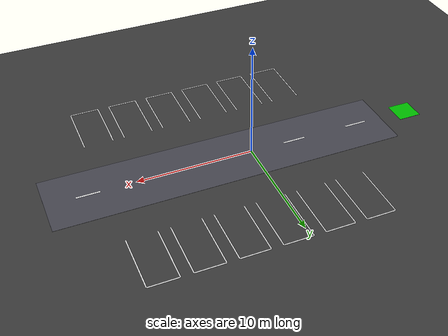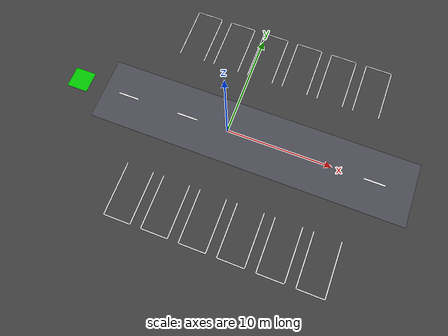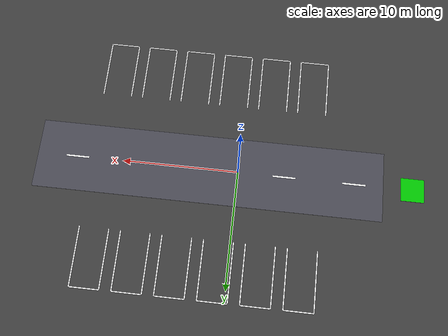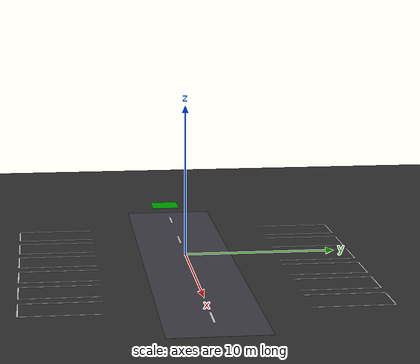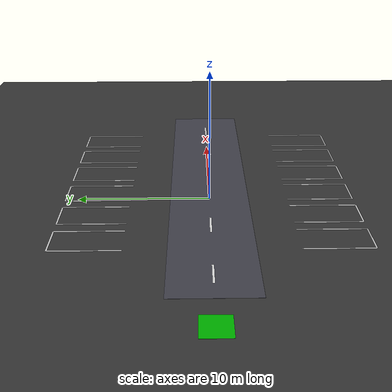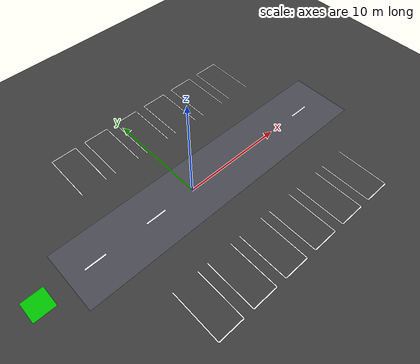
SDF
<?xml version="1.0" ?>
<sdf version="1.6">
  <world name="parking_lot_a">

    <!-- Sun / lighting -->
    <include>
      <uri>model://sun</uri>
    </include>

    <!-- Physics -->
    <physics type="ode">
      <real_time_update_rate>1000</real_time_update_rate>
      <max_step_size>0.001</max_step_size>
    </physics>

    <!-- Ground (asphalt) -->
    <model name="ground_plane">
      <static>true</static>
      <link name="link">
        <collision name="collision">
          <geometry>
            <plane>
              <normal>0 0 1</normal>
              <size>40 40</size>
            </plane>
          </geometry>
        </collision>
        <visual name="visual">
          <geometry>
            <plane>
              <normal>0 0 1</normal>
              <size>40 40</size>
            </plane>
          </geometry>
          <material>
            <ambient>0.25 0.25 0.25 1</ambient>
            <diffuse>0.25 0.25 0.25 1</diffuse>
          </material>
        </visual>
      </link>
    </model>

    <!-- Entrance marker (green box) -->
    <model name="entrance_marker">
      <static>true</static>
      <link name="link">
        <visual name="entrance_visual">
          <pose>-15 0 0 0 0 0</pose>
          <geometry><box><size>2 2 0.02</size></box></geometry>
          <material><diffuse>0 0.8 0 1</diffuse></material>
        </visual>
      </link>
    </model>

    <!-- Central road (horizontal) -->
    <model name="main_lane">
      <static>true</static>
      <link name="link">
        <visual name="lane_surface">
          <pose>2.5 0 0.001 0 0 0</pose>
          <geometry><box><size>30 6 0.01</size></box></geometry>
          <material>
            <ambient>0.20 0.20 0.22 1</ambient>
            <diffuse>0.30 0.30 0.34 1</diffuse>
          </material>
        </visual>

        <!-- Center dashed lines -->
        <visual name="dash1"><pose>-10 0 0.002 0 0 0</pose>
          <geometry><box><size>2 0.15 0.01</size></box></geometry>
          <material><diffuse>1 1 1 1</diffuse></material>
        </visual>
        <visual name="dash2"><pose>-4 0 0.002 0 0 0</pose>
          <geometry><box><size>2 0.15 0.01</size></box></geometry>
          <material><diffuse>1 1 1 1</diffuse></material>
        </visual>
        <visual name="dash3"><pose>2 0 0.002 0 0 0</pose>
          <geometry><box><size>2 0.15 0.01</size></box></geometry>
          <material><diffuse>1 1 1 1</diffuse></material>
        </visual>
        <visual name="dash4"><pose>8 0 0.002 0 0 0</pose>
          <geometry><box><size>2 0.15 0.01</size></box></geometry>
          <material><diffuse>1 1 1 1</diffuse></material>
        </visual>
        <visual name="dash5"><pose>14 0 0.002 0 0 0</pose>
          <geometry><box><size>2 0.15 0.01</size></box></geometry>
          <material><diffuse>1 1 1 1</diffuse></material>
        </visual>
      </link>
    </model>

    <!-- Parking bays -->
    <model name="parking_bays">
      <static>true</static>
      <link name="link">

        <!-- ===== Top row (A1..A6) ===== -->
        <!-- facing down (toward the road) -->
        <visual name="A1_back"><pose>-6 11 0 0 0 0</pose>
          <geometry><box><size>2.5 0.1 0.01</size></box></geometry><material><diffuse>1 1 1 1</diffuse></material></visual>
        <visual name="A1_left"><pose>-7.25 8.5 0 0 0 0</pose>
          <geometry><box><size>0.1 5 0.01</size></box></geometry><material><diffuse>1 1 1 1</diffuse></material></visual>
        <visual name="A1_right"><pose>-4.75 8.5 0 0 0 0</pose>
          <geometry><box><size>0.1 5 0.01</size></box></geometry><material><diffuse>1 1 1 1</diffuse></material></visual>

        <visual name="A2_back"><pose>-2.5 11 0 0 0 0</pose>
          <geometry><box><size>2.5 0.1 0.01</size></box></geometry><material><diffuse>1 1 1 1</diffuse></material></visual>
        <visual name="A2_left"><pose>-3.75 8.5 0 0 0 0</pose>
          <geometry><box><size>0.1 5 0.01</size></box></geometry><material><diffuse>1 1 1 1</diffuse></material></visual>
        <visual name="A2_right"><pose>-1.25 8.5 0 0 0 0</pose>
          <geometry><box><size>0.1 5 0.01</size></box></geometry><material><diffuse>1 1 1 1</diffuse></material></visual>

        <visual name="A3_back"><pose>1 11 0 0 0 0</pose>
          <geometry><box><size>2.5 0.1 0.01</size></box></geometry><material><diffuse>1 1 1 1</diffuse></material></visual>
        <visual name="A3_left"><pose>-0.25 8.5 0 0 0 0</pose>
          <geometry><box><size>0.1 5 0.01</size></box></geometry><material><diffuse>1 1 1 1</diffuse></material></visual>
        <visual name="A3_right"><pose>2.25 8.5 0 0 0 0</pose>
          <geometry><box><size>0.1 5 0.01</size></box></geometry><material><diffuse>1 1 1 1</diffuse></material></visual>

        <visual name="A4_back"><pose>4.5 11 0 0 0 0</pose>
          <geometry><box><size>2.5 0.1 0.01</size></box></geometry><material><diffuse>1 1 1 1</diffuse></material></visual>
        <visual name="A4_left"><pose>3.25 8.5 0 0 0 0</pose>
          <geometry><box><size>0.1 5 0.01</size></box></geometry><material><diffuse>1 1 1 1</diffuse></material></visual>
        <visual name="A4_right"><pose>5.75 8.5 0 0 0 0</pose>
          <geometry><box><size>0.1 5 0.01</size></box></geometry><material><diffuse>1 1 1 1</diffuse></material></visual>

        <visual name="A5_back"><pose>8 11 0 0 0 0</pose>
          <geometry><box><size>2.5 0.1 0.01</size></box></geometry><material><diffuse>1 1 1 1</diffuse></material></visual>
        <visual name="A5_left"><pose>6.75 8.5 0 0 0 0</pose>
          <geometry><box><size>0.1 5 0.01</size></box></geometry><material><diffuse>1 1 1 1</diffuse></material></visual>
        <visual name="A5_right"><pose>9.25 8.5 0 0 0 0</pose>
          <geometry><box><size>0.1 5 0.01</size></box></geometry><material><diffuse>1 1 1 1</diffuse></material></visual>

        <visual name="A6_back"><pose>11.5 11 0 0 0 0</pose>
          <geometry><box><size>2.5 0.1 0.01</size></box></geometry><material><diffuse>1 1 1 1</diffuse></material></visual>
        <visual name="A6_left"><pose>10.25 8.5 0 0 0 0</pose>
          <geometry><box><size>0.1 5 0.01</size></box></geometry><material><diffuse>1 1 1 1</diffuse></material></visual>
        <visual name="A6_right"><pose>12.75 8.5 0 0 0 0</pose>
          <geometry><box><size>0.1 5 0.01</size></box></geometry><material><diffuse>1 1 1 1</diffuse></material></visual>

        <!-- ===== Bottom row (B1..B6) ===== -->
        <!-- facing up (toward the road) -->
        <visual name="B1_back"><pose>-6 -11 0 0 0 0</pose>
          <geometry><box><size>2.5 0.1 0.01</size></box></geometry><material><diffuse>1 1 1 1</diffuse></material></visual>
        <visual name="B1_left"><pose>-7.25 -8.5 0 0 0 0</pose>
          <geometry><box><size>0.1 5 0.01</size></box></geometry><material><diffuse>1 1 1 1</diffuse></material></visual>
        <visual name="B1_right"><pose>-4.75 -8.5 0 0 0 0</pose>
          <geometry><box><size>0.1 5 0.01</size></box></geometry><material><diffuse>1 1 1 1</diffuse></material></visual>

        <visual name="B2_back"><pose>-2.5 -11 0 0 0 0</pose>
          <geometry><box><size>2.5 0.1 0.01</size></box></geometry><material><diffuse>1 1 1 1</diffuse></material></visual>
        <visual name="B2_left"><pose>-3.75 -8.5 0 0 0 0</pose>
          <geometry><box><size>0.1 5 0.01</size></box></geometry><material><diffuse>1 1 1 1</diffuse></material></visual>
        <visual name="B2_right"><pose>-1.25 -8.5 0 0 0 0</pose>
          <geometry><box><size>0.1 5 0.01</size></box></geometry><material><diffuse>1 1 1 1</diffuse></material></visual>

        <visual name="B3_back"><pose>1 -11 0 0 0 0</pose>
          <geometry><box><size>2.5 0.1 0.01</size></box></geometry><material><diffuse>1 1 1 1</diffuse></material></visual>
        <visual name="B3_left"><pose>-0.25 -8.5 0 0 0 0</pose>
          <geometry><box><size>0.1 5 0.01</size></box></geometry><material><diffuse>1 1 1 1</diffuse></material></visual>
        <visual name="B3_right"><pose>2.25 -8.5 0 0 0 0</pose>
          <geometry><box><size>0.1 5 0.01</size></box></geometry><material><diffuse>1 1 1 1</diffuse></material></visual>

        <visual name="B4_back"><pose>4.5 -11 0 0 0 0</pose>
          <geometry><box><size>2.5 0.1 0.01</size></box></geometry><material><diffuse>1 1 1 1</diffuse></material></visual>
        <visual name="B4_left"><pose>3.25 -8.5 0 0 0 0</pose>
          <geometry><box><size>0.1 5 0.01</size></box></geometry><material><diffuse>1 1 1 1</diffuse></material></visual>
        <visual name="B4_right"><pose>5.75 -8.5 0 0 0 0</pose>
          <geometry><box><size>0.1 5 0.01</size></box></geometry><material><diffuse>1 1 1 1</diffuse></material></visual>

        <visual name="B5_back"><pose>8 -11 0 0 0 0</pose>
          <geometry><box><size>2.5 0.1 0.01</size></box></geometry><material><diffuse>1 1 1 1</diffuse></material></visual>
        <visual name="B5_left"><pose>6.75 -8.5 0 0 0 0</pose>
          <geometry><box><size>0.1 5 0.01</size></box></geometry><material><diffuse>1 1 1 1</diffuse></material></visual>
        <visual name="B5_right"><pose>9.25 -8.5 0 0 0 0</pose>
          <geometry><box><size>0.1 5 0.01</size></box></geometry><material><diffuse>1 1 1 1</diffuse></material></visual>

        <visual name="B6_back"><pose>11.5 -11 0 0 0 0</pose>
          <geometry><box><size>2.5 0.1 0.01</size></box></geometry><material><diffuse>1 1 1 1</diffuse></material></visual>
        <visual name="B6_left"><pose>10.25 -8.5 0 0 0 0</pose>
          <geometry><box><size>0.1 5 0.01</size></box></geometry><material><diffuse>1 1 1 1</diffuse></material></visual>
        <visual name="B6_right"><pose>12.75 -8.5 0 0 0 0</pose>
          <geometry><box><size>0.1 5 0.01</size></box></geometry><material><diffuse>1 1 1 1</diffuse></material></visual>

      </link>
    </model>

  </world>
</sdf>
